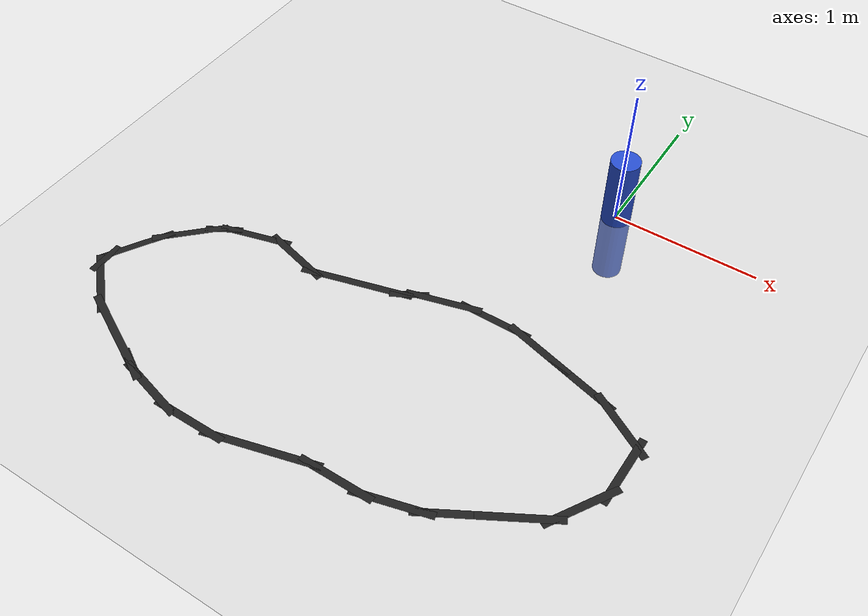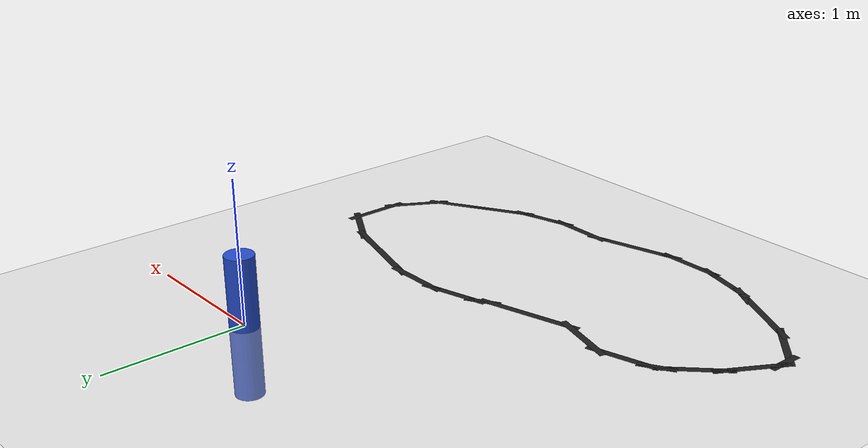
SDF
<sdf version='1.4'>
  <world name='default'>
    <!-- A global light source -->
    <include>
      <uri>model://sun</uri>
    </include>

    <!-- A ground plane -->
    <include>
      <uri>model://ground_plane</uri>
    </include>

    <physics type="ode">
      <real_time_update_rate>1000.0</real_time_update_rate>
      <max_step_size>0.001</max_step_size>
      <real_time_factor>1</real_time_factor>
      <ode>
        <solver>
          <type>quick</type>
          <iters>150</iters>
          <precon_iters>0</precon_iters>
          <sor>1.400000</sor>
          <use_dynamic_moi_rescaling>1</use_dynamic_moi_rescaling>
        </solver>
        <constraints>
          <cfm>0.00001</cfm>
          <erp>0.2</erp>
          <contact_max_correcting_vel>2000.000000</contact_max_correcting_vel>
          <contact_surface_layer>0.01000</contact_surface_layer>
        </constraints>
      </ode>
    </physics>

    <!-- Load world -->
    <include>
      <uri>model://turtlebot3_world</uri>
    </include>

    <model name='unit_cylinder'>
        <link name='link'>
          <inertial>
            <mass>1</mass>
            <inertia>
              <ixx>0.145833</ixx>
              <ixy>0</ixy>
              <ixz>0</ixz>
              <iyy>0.145833</iyy>
              <iyz>0</iyz>
              <izz>0.125</izz>
            </inertia>
            <pose frame=''>0 0 0 0 -0 0</pose>
          </inertial>
          <self_collide>0</self_collide>
          <enable_wind>0</enable_wind>
          <kinematic>0</kinematic>
          <pose frame=''>0 0 0 0 -0 0</pose>
          <gravity>1</gravity>
          <visual name='visual'>
            <geometry>
              <cylinder>
                <radius>0.1</radius>
                <length>1</length>
              </cylinder>
            </geometry>
            <material>
              <script>
                <name>Gazebo/Blue</name>
                <uri>file://media/materials/scripts/gazebo.material</uri>
              </script>
              <shader type='vertex'>
                <normal_map>__default__</normal_map>
              </shader>
              <ambient>0.0 0.0 0.0 1</ambient>
              <diffuse>1.0 0.0 0.0 1</diffuse>
              <specular>0.01 0.01 0.01 1</specular>
              <emissive>0 0 0 1</emissive>
            </material>
            <pose frame=''>0 0 0 0 -0 0</pose>
            <transparency>0</transparency>
            <cast_shadows>1</cast_shadows>
          </visual>
          <collision name='collision'>
            <laser_retro>0</laser_retro>
            <max_contacts>10</max_contacts>
            <pose frame=''>0 0 0 0 -0 0</pose>
            <geometry>
              <cylinder>
                <radius>0.1</radius>
                <length>1</length>
              </cylinder>
            </geometry>
            <surface>
              <friction>
                <ode>
                  <mu>1</mu>
                  <mu2>1</mu2>
                  <fdir1>0 0 0</fdir1>
                  <slip1>0</slip1>
                  <slip2>0</slip2>
                </ode>
                <torsional>
                  <coefficient>1</coefficient>
                  <patch_radius>0</patch_radius>
                  <surface_radius>0</surface_radius>
                  <use_patch_radius>1</use_patch_radius>
                  <ode>
                    <slip>0</slip>
                  </ode>
                </torsional>
              </friction>
              <bounce>
                <restitution_coefficient>0</restitution_coefficient>
                <threshold>1e+06</threshold>
              </bounce>
              <contact>
                <collide_without_contact>0</collide_without_contact>
                <collide_without_contact_bitmask>1</collide_without_contact_bitmask>
                <collide_bitmask>1</collide_bitmask>
                <ode>
                  <soft_cfm>0</soft_cfm>
                  <soft_erp>0.2</soft_erp>
                  <kp>1e+13</kp>
                  <kd>1</kd>
                  <max_vel>0.01</max_vel>
                  <min_depth>0</min_depth>
                </ode>
                <bullet>
                  <split_impulse>1</split_impulse>
                  <split_impulse_penetration_threshold>-0.01</split_impulse_penetration_threshold>
                  <soft_cfm>0</soft_cfm>
                  <soft_erp>0.2</soft_erp>
                  <kp>1e+13</kp>
                  <kd>1</kd>
                </bullet>
              </contact>
            </surface>
          </collision>
        </link>
        <static>0</static>
        <allow_auto_disable>1</allow_auto_disable>
      </model>

    <scene>
      <ambient>1 1 1 1</ambient>
      <background>0.7 0.7 0.7 1</background>
      <shadows>false</shadows>
    </scene>

    <gui fullscreen='0'>
      <camera name='user_camera'>
        <pose>0.8 0.0 12.0 0 1.5708 0</pose>
        <view_controller>orbit</view_controller>
      </camera>
    </gui>
  </world>
</sdf>

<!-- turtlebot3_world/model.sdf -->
<sdf version='1.6'>
  <model name='track_normal'>
    <pose frame=''>-0.807647 -2.04801 0 0 -0 0</pose>
    <link name='Wall_0'>
      <collision name='Wall_0_Collision'>
        <geometry>
          <box>
            <size>0.25 0.05 0.0000005</size>
          </box>
        </geometry>
        <pose frame=''>0 0 0.02 0 -0 0</pose>
      </collision>
      <visual name='Wall_0_Visual'>
        <pose frame=''>0 0 0.02 0 -0 0</pose>
        <geometry>
          <box>
            <size>0.25 0.05 0.0000005</size>
          </box>
        </geometry>
        <material>
          <script>
            <uri>file://media/materials/scripts/gazebo.material</uri>
            <name>Gazebo/Black</name>
          </script>
          <ambient>0 0 0 1</ambient>
        </material>
        <meta>
          <layer>0</layer>
        </meta>
      </visual>
      <pose frame=''>-1.01905 -0.686993 0 0 -0 -0.523599</pose>
    </link>
    <link name='Wall_1'>
      <collision name='Wall_1_Collision'>
        <geometry>
          <box>
            <size>0.5 0.05 0.0000005</size>
          </box>
        </geometry>
        <pose frame=''>0 0 0.02 0 -0 0</pose>
      </collision>
      <visual name='Wall_1_Visual'>
        <pose frame=''>0 0 0.02 0 -0 0</pose>
        <geometry>
          <box>
            <size>0.5 0.05 0.0000005</size>
          </box>
        </geometry>
        <material>
          <script>
            <uri>file://media/materials/scripts/gazebo.material</uri>
            <name>Gazebo/Black</name>
          </script>
          <ambient>0 0 0 1</ambient>
        </material>
        <meta>
          <layer>0</layer>
        </meta>
      </visual>
      <pose frame=''>-0.806714 -0.757287 0 0 -0 -0.261799</pose>
    </link>
    <link name='Wall_10'>
      <collision name='Wall_10_Collision'>
        <geometry>
          <box>
            <size>0.5 0.05 0.0000005</size>
          </box>
        </geometry>
        <pose frame=''>0 0 0.02 0 -0 0</pose>
      </collision>
      <visual name='Wall_10_Visual'>
        <pose frame=''>0 0 0.02 0 -0 0</pose>
        <geometry>
          <box>
            <size>0.5 0.05 0.0000005</size>
          </box>
        </geometry>
        <material>
          <script>
            <uri>file://media/materials/scripts/gazebo.material</uri>
            <name>Gazebo/Black</name>
          </script>
          <ambient>0 0 0 1</ambient>
        </material>
        <meta>
          <layer>0</layer>
        </meta>
      </visual>
      <pose frame=''>1.60962 0.533907 0 0 -0 2.61799</pose>
    </link>
    <link name='Wall_11'>
      <collision name='Wall_11_Collision'>
        <geometry>
          <box>
            <size>0.5 0.05 0.0000005</size>
          </box>
        </geometry>
        <pose frame=''>0 0 0.02 0 -0 0</pose>
      </collision>
      <visual name='Wall_11_Visual'>
        <pose frame=''>0 0 0.02 0 -0 0</pose>
        <geometry>
          <box>
            <size>0.5 0.05 0.0000005</size>
          </box>
        </geometry>
        <material>
          <script>
            <uri>file://media/materials/scripts/gazebo.material</uri>
            <name>Gazebo/Black</name>
          </script>
          <ambient>0 0 0 1</ambient>
        </material>
        <meta>
          <layer>0</layer>
        </meta>
      </visual>
      <pose frame=''>1.28903 0.6667 0 0 -0 2.87979</pose>
    </link>
    <link name='Wall_12'>
      <collision name='Wall_12_Collision'>
        <geometry>
          <box>
            <size>0.5 0.05 0.0000005</size>
          </box>
        </geometry>
        <pose frame=''>0 0 0.02 0 -0 0</pose>
      </collision>
      <visual name='Wall_12_Visual'>
        <pose frame=''>0 0 0.02 0 -0 0</pose>
        <geometry>
          <box>
            <size>0.5 0.05 0.0000005</size>
          </box>
        </geometry>
        <material>
          <script>
            <uri>file://media/materials/scripts/gazebo.material</uri>
            <name>Gazebo/Black</name>
          </script>
          <ambient>0 0 0 1</ambient>
        </material>
        <meta>
          <layer>0</layer>
        </meta>
      </visual>
      <pose frame=''>0.950951 0.757287 0 0 -0 2.87979</pose>
    </link>
    <link name='Wall_13'>
      <collision name='Wall_13_Collision'>
        <geometry>
          <box>
            <size>0.5 0.05 0.0000005</size>
          </box>
        </geometry>
        <pose frame=''>0 0 0.02 0 -0 0</pose>
      </collision>
      <visual name='Wall_13_Visual'>
        <pose frame=''>0 0 0.02 0 -0 0</pose>
        <geometry>
          <box>
            <size>0.5 0.05 0.0000005</size>
          </box>
        </geometry>
        <material>
          <script>
            <uri>file://media/materials/scripts/gazebo.material</uri>
            <name>Gazebo/Black</name>
          </script>
          <ambient>0 0 0 1</ambient>
        </material>
        <meta>
          <layer>0</layer>
        </meta>
      </visual>
      <pose frame=''>0.606914 0.80258 0 0 -0 3.14159</pose>
    </link>
    <link name='Wall_14'>
      <collision name='Wall_14_Collision'>
        <geometry>
          <box>
            <size>0.5 0.05 0.0000005</size>
          </box>
        </geometry>
        <pose frame=''>0 0 0.02 0 -0 0</pose>
      </collision>
      <visual name='Wall_14_Visual'>
        <pose frame=''>0 0 0.02 0 -0 0</pose>
        <geometry>
          <box>
            <size>0.5 0.05 0.0000005</size>
          </box>
        </geometry>
        <material>
          <script>
            <uri>file://media/materials/scripts/gazebo.material</uri>
            <name>Gazebo/Black</name>
          </script>
          <ambient>0 0 0 1</ambient>
        </material>
        <meta>
          <layer>0</layer>
        </meta>
      </visual>
      <pose frame=''>0.262877 0.757287 0 0 -0 -2.87979</pose>
    </link>
    <link name='Wall_15'>
      <collision name='Wall_15_Collision'>
        <geometry>
          <box>
            <size>0.25 0.05 0.0000005</size>
          </box>
        </geometry>
        <pose frame=''>0 0 0.02 0 -0 0</pose>
      </collision>
      <visual name='Wall_15_Visual'>
        <pose frame=''>0 0 0.02 0 -0 0</pose>
        <geometry>
          <box>
            <size>0.25 0.05 0.0000005</size>
          </box>
        </geometry>
        <material>
          <script>
            <uri>file://media/materials/scripts/gazebo.material</uri>
            <name>Gazebo/Black</name>
          </script>
          <ambient>0 0 0 1</ambient>
        </material>
        <meta>
          <layer>0</layer>
        </meta>
      </visual>
      <pose frame=''>0.050538 0.686993 0 0 -0 -2.61799</pose>
    </link>
    <link name='Wall_16'>
      <collision name='Wall_16_Collision'>
        <geometry>
          <box>
            <size>0.75 0.05 0.0000005</size>
          </box>
        </geometry>
        <pose frame=''>0 0 0.02 0 -0 0</pose>
      </collision>
      <visual name='Wall_16_Visual'>
        <pose frame=''>0 0 0.02 0 -0 0</pose>
        <geometry>
          <box>
            <size>0.75 0.05 0.0000005</size>
          </box>
        </geometry>
        <material>
          <script>
            <uri>file://media/materials/scripts/gazebo.material</uri>
            <name>Gazebo/Black</name>
          </script>
          <ambient>0 0 0 1</ambient>
        </material>
        <meta>
          <layer>0</layer>
        </meta>
      </visual>
      <pose frame=''>-0.282541 0.584348 0 0 -0 -2.87979</pose>
    </link>
    <link name='Wall_17'>
      <collision name='Wall_17_Collision'>
        <geometry>
          <box>
            <size>0.5 0.05 0.0000005</size>
          </box>
        </geometry>
        <pose frame=''>0 0 0.02 0 -0 0</pose>
      </collision>
      <visual name='Wall_17_Visual'>
        <pose frame=''>0 0 0.02 0 -0 0</pose>
        <geometry>
          <box>
            <size>0.5 0.05 0.0000005</size>
          </box>
        </geometry>
        <material>
          <script>
            <uri>file://media/materials/scripts/gazebo.material</uri>
            <name>Gazebo/Black</name>
          </script>
          <ambient>0 0 0 1</ambient>
        </material>
        <meta>
          <layer>0</layer>
        </meta>
      </visual>
      <pose frame=''>-0.741356 0.551995 0 0 -0 2.87979</pose>
    </link>
    <link name='Wall_18'>
      <collision name='Wall_18_Collision'>
        <geometry>
          <box>
            <size>0.5 0.05 0.0000005</size>
          </box>
        </geometry>
        <pose frame=''>0 0 0.02 0 -0 0</pose>
      </collision>
      <visual name='Wall_18_Visual'>
        <pose frame=''>0 0 0.02 0 -0 0</pose>
        <geometry>
          <box>
            <size>0.5 0.05 0.0000005</size>
          </box>
        </geometry>
        <material>
          <script>
            <uri>file://media/materials/scripts/gazebo.material</uri>
            <name>Gazebo/Black</name>
          </script>
          <ambient>0 0 0 1</ambient>
        </material>
        <meta>
          <layer>0</layer>
        </meta>
      </visual>
      <pose frame=''>-1.07943 0.551995 0 0 -0 -2.87979</pose>
    </link>
    <link name='Wall_19'>
      <collision name='Wall_19_Collision'>
        <geometry>
          <box>
            <size>0.25 0.05 0.0000005</size>
          </box>
        </geometry>
        <pose frame=''>0 0 0.02 0 -0 0</pose>
      </collision>
      <visual name='Wall_19_Visual'>
        <pose frame=''>0 0 0.02 0 -0 0</pose>
        <geometry>
          <box>
            <size>0.25 0.05 0.0000005</size>
          </box>
        </geometry>
        <material>
          <script>
            <uri>file://media/materials/scripts/gazebo.material</uri>
            <name>Gazebo/Black</name>
          </script>
          <ambient>0 0 0 1</ambient>
        </material>
        <meta>
          <layer>0</layer>
        </meta>
      </visual>
      <pose frame=''>-1.29177 0.481702 0 0 -0 -2.61799</pose>
    </link>
    <link name='Wall_2'>
      <collision name='Wall_2_Collision'>
        <geometry>
          <box>
            <size>0.5 0.05 0.0000005</size>
          </box>
        </geometry>
        <pose frame=''>0 0 0.02 0 -0 0</pose>
      </collision>
      <visual name='Wall_2_Visual'>
        <pose frame=''>0 0 0.02 0 -0 0</pose>
        <geometry>
          <box>
            <size>0.5 0.05 0.0000005</size>
          </box>
        </geometry>
        <material>
          <script>
            <uri>file://media/materials/scripts/gazebo.material</uri>
            <name>Gazebo/Black</name>
          </script>
          <ambient>0 0 0 1</ambient>
        </material>
        <meta>
          <layer>0</layer>
        </meta>
      </visual>
      <pose frame=''>-0.462677 -0.80258 0 0 -0 0</pose>
    </link>
    <link name='Wall_20'>
      <collision name='Wall_20_Collision'>
        <geometry>
          <box>
            <size>0.5 0.05 0.0000005</size>
          </box>
        </geometry>
        <pose frame=''>0 0 0.02 0 -0 0</pose>
      </collision>
      <visual name='Wall_20_Visual'>
        <pose frame=''>0 0 0.02 0 -0 0</pose>
        <geometry>
          <box>
            <size>0.5 0.05 0.0000005</size>
          </box>
        </geometry>
        <material>
          <script>
            <uri>file://media/materials/scripts/gazebo.material</uri>
            <name>Gazebo/Black</name>
          </script>
          <ambient>0 0 0 1</ambient>
        </material>
        <meta>
          <layer>0</layer>
        </meta>
      </visual>
      <pose frame=''>-1.45881 0.332958 0 0 -0 -2.35619</pose>
    </link>
    <link name='Wall_21'>
      <collision name='Wall_21_Collision'>
        <geometry>
          <box>
            <size>0.5 0.05 0.0000005</size>
          </box>
        </geometry>
        <pose frame=''>0 0 0.02 0 -0 0</pose>
      </collision>
      <visual name='Wall_21_Visual'>
        <pose frame=''>0 0 0.02 0 -0 0</pose>
        <geometry>
          <box>
            <size>0.5 0.05 0.0000005</size>
          </box>
        </geometry>
        <material>
          <script>
            <uri>file://media/materials/scripts/gazebo.material</uri>
            <name>Gazebo/Black</name>
          </script>
          <ambient>0 0 0 1</ambient>
        </material>
        <meta>
          <layer>0</layer>
        </meta>
      </visual>
      <pose frame=''>-1.67006 0.05766 0 0 -0 -2.0944</pose>
    </link>
    <link name='Wall_22'>
      <collision name='Wall_22_Collision'>
        <geometry>
          <box>
            <size>0.25 0.05 0.0000005</size>
          </box>
        </geometry>
        <pose frame=''>0 0 0.02 0 -0 0</pose>
      </collision>
      <visual name='Wall_22_Visual'>
        <pose frame=''>0 0 0.02 0 -0 0</pose>
        <geometry>
          <box>
            <size>0.25 0.05 0.0000005</size>
          </box>
        </geometry>
        <material>
          <script>
            <uri>file://media/materials/scripts/gazebo.material</uri>
            <name>Gazebo/Black</name>
          </script>
          <ambient>0 0 0 1</ambient>
        </material>
        <meta>
          <layer>0</layer>
        </meta>
      </visual>
      <pose frame=''>-1.75756 -0.143894 0 0 -0 -1.5708</pose>
    </link>
    <link name='Wall_23'>
      <collision name='Wall_23_Collision'>
        <geometry>
          <box>
            <size>0.5 0.05 0.0000005</size>
          </box>
        </geometry>
        <pose frame=''>0 0 0.02 0 -0 0</pose>
      </collision>
      <visual name='Wall_23_Visual'>
        <pose frame=''>0 0 0.02 0 -0 0</pose>
        <geometry>
          <box>
            <size>0.5 0.05 0.0000005</size>
          </box>
        </geometry>
        <material>
          <script>
            <uri>file://media/materials/scripts/gazebo.material</uri>
            <name>Gazebo/Black</name>
          </script>
          <ambient>0 0 0 1</ambient>
        </material>
        <meta>
          <layer>0</layer>
        </meta>
      </visual>
      <pose frame=''>-1.63381 -0.317638 0 0 -0 -0.785398</pose>
    </link>
    <link name='Wall_24'>
      <collision name='Wall_24_Collision'>
        <geometry>
          <box>
            <size>0.748938 0.05 0.0000005</size>
          </box>
        </geometry>
        <pose frame=''>0 0 0.02 0 -0 0</pose>
      </collision>
      <visual name='Wall_24_Visual'>
        <pose frame=''>0 0 0.02 0 -0 0</pose>
        <geometry>
          <box>
            <size>0.748938 0.05 0.0000005</size>
          </box>
        </geometry>
        <material>
          <script>
            <uri>file://media/materials/scripts/gazebo.material</uri>
            <name>Gazebo/Black</name>
          </script>
          <ambient>0 0 0 1</ambient>
        </material>
        <meta>
          <layer>0</layer>
        </meta>
      </visual>
      <pose frame=''>-1.24291 -0.576688 0 0 -0 -0.468804</pose>
    </link>
    <link name='Wall_3'>
      <collision name='Wall_3_Collision'>
        <geometry>
          <box>
            <size>0.75 0.05 0.0000005</size>
          </box>
        </geometry>
        <pose frame=''>0 0 0.02 0 -0 0</pose>
      </collision>
      <visual name='Wall_3_Visual'>
        <pose frame=''>0 0 0.02 0 -0 0</pose>
        <geometry>
          <box>
            <size>0.75 0.05 0.0000005</size>
          </box>
        </geometry>
        <material>
          <script>
            <uri>file://media/materials/scripts/gazebo.material</uri>
            <name>Gazebo/Black</name>
          </script>
          <ambient>0 0 0 1</ambient>
        </material>
        <meta>
          <layer>0</layer>
        </meta>
      </visual>
      <pose frame=''>0.002101 -0.724934 0 0 -0 0.261799</pose>
    </link>
    <link name='Wall_4'>
      <collision name='Wall_4_Collision'>
        <geometry>
          <box>
            <size>0.5 0.05 0.0000005</size>
          </box>
        </geometry>
        <pose frame=''>0 0 0.02 0 -0 0</pose>
      </collision>
      <visual name='Wall_4_Visual'>
        <pose frame=''>0 0 0.02 0 -0 0</pose>
        <geometry>
          <box>
            <size>0.5 0.05 0.0000005</size>
          </box>
        </geometry>
        <material>
          <script>
            <uri>file://media/materials/scripts/gazebo.material</uri>
            <name>Gazebo/Black</name>
          </script>
          <ambient>0 0 0 1</ambient>
        </material>
        <meta>
          <layer>0</layer>
        </meta>
      </visual>
      <pose frame=''>0.466879 -0.647289 0 0 -0 0</pose>
    </link>
    <link name='Wall_5'>
      <collision name='Wall_5_Collision'>
        <geometry>
          <box>
            <size>0.5 0.05 0.0000005</size>
          </box>
        </geometry>
        <pose frame=''>0 0 0.02 0 -0 0</pose>
      </collision>
      <visual name='Wall_5_Visual'>
        <pose frame=''>0 0 0.02 0 -0 0</pose>
        <geometry>
          <box>
            <size>0.5 0.05 0.0000005</size>
          </box>
        </geometry>
        <material>
          <script>
            <uri>file://media/materials/scripts/gazebo.material</uri>
            <name>Gazebo/Black</name>
          </script>
          <ambient>0 0 0 1</ambient>
        </material>
        <meta>
          <layer>0</layer>
        </meta>
      </visual>
      <pose frame=''>0.810916 -0.601996 0 0 -0 0.261799</pose>
    </link>
    <link name='Wall_6'>
      <collision name='Wall_6_Collision'>
        <geometry>
          <box>
            <size>0.5 0.05 0.0000005</size>
          </box>
        </geometry>
        <pose frame=''>0 0 0.02 0 -0 0</pose>
      </collision>
      <visual name='Wall_6_Visual'>
        <pose frame=''>0 0 0.02 0 -0 0</pose>
        <geometry>
          <box>
            <size>0.5 0.05 0.0000005</size>
          </box>
        </geometry>
        <material>
          <script>
            <uri>file://media/materials/scripts/gazebo.material</uri>
            <name>Gazebo/Black</name>
          </script>
          <ambient>0 0 0 1</ambient>
        </material>
        <meta>
          <layer>0</layer>
        </meta>
      </visual>
      <pose frame=''>1.13151 -0.469202 0 0 -0 0.523599</pose>
    </link>
    <link name='Wall_7'>
      <collision name='Wall_7_Collision'>
        <geometry>
          <box>
            <size>0.5 0.05 0.0000005</size>
          </box>
        </geometry>
        <pose frame=''>0 0 0.02 0 -0 0</pose>
      </collision>
      <visual name='Wall_7_Visual'>
        <pose frame=''>0 0 0.02 0 -0 0</pose>
        <geometry>
          <box>
            <size>0.5 0.05 0.0000005</size>
          </box>
        </geometry>
        <material>
          <script>
            <uri>file://media/materials/scripts/gazebo.material</uri>
            <name>Gazebo/Black</name>
          </script>
          <ambient>0 0 0 1</ambient>
        </material>
        <meta>
          <layer>0</layer>
        </meta>
      </visual>
      <pose frame=''>1.43462 -0.294202 0 0 -0 0.523599</pose>
    </link>
    <link name='Wall_8'>
      <collision name='Wall_8_Collision'>
        <geometry>
          <box>
            <size>0.5 0.05 0.0000005</size>
          </box>
        </geometry>
        <pose frame=''>0 0 0.02 0 -0 0</pose>
      </collision>
      <visual name='Wall_8_Visual'>
        <pose frame=''>0 0 0.02 0 -0 0</pose>
        <geometry>
          <box>
            <size>0.5 0.05 0.0000005</size>
          </box>
        </geometry>
        <material>
          <script>
            <uri>file://media/materials/scripts/gazebo.material</uri>
            <name>Gazebo/Black</name>
          </script>
          <ambient>0 0 0 1</ambient>
        </material>
        <meta>
          <layer>0</layer>
        </meta>
      </visual>
      <pose frame=''>1.67367 -0.055148 0 0 -0 1.0472</pose>
    </link>
    <link name='Wall_9'>
      <collision name='Wall_9_Collision'>
        <geometry>
          <box>
            <size>0.5 0.05 0.0000005</size>
          </box>
        </geometry>
        <pose frame=''>0 0 0.02 0 -0 0</pose>
      </collision>
      <visual name='Wall_9_Visual'>
        <pose frame=''>0 0 0.02 0 -0 0</pose>
        <geometry>
          <box>
            <size>0.5 0.05 0.0000005</size>
          </box>
        </geometry>
        <material>
          <script>
            <uri>file://media/materials/scripts/gazebo.material</uri>
            <name>Gazebo/Black</name>
          </script>
          <ambient>0 0 0 1</ambient>
        </material>
        <meta>
          <layer>0</layer>
        </meta>
      </visual>
      <pose frame=''>1.76117 0.271407 0 0 -0 1.5708</pose>
    </link>
    <static>1</static>
  </model>
</sdf>
